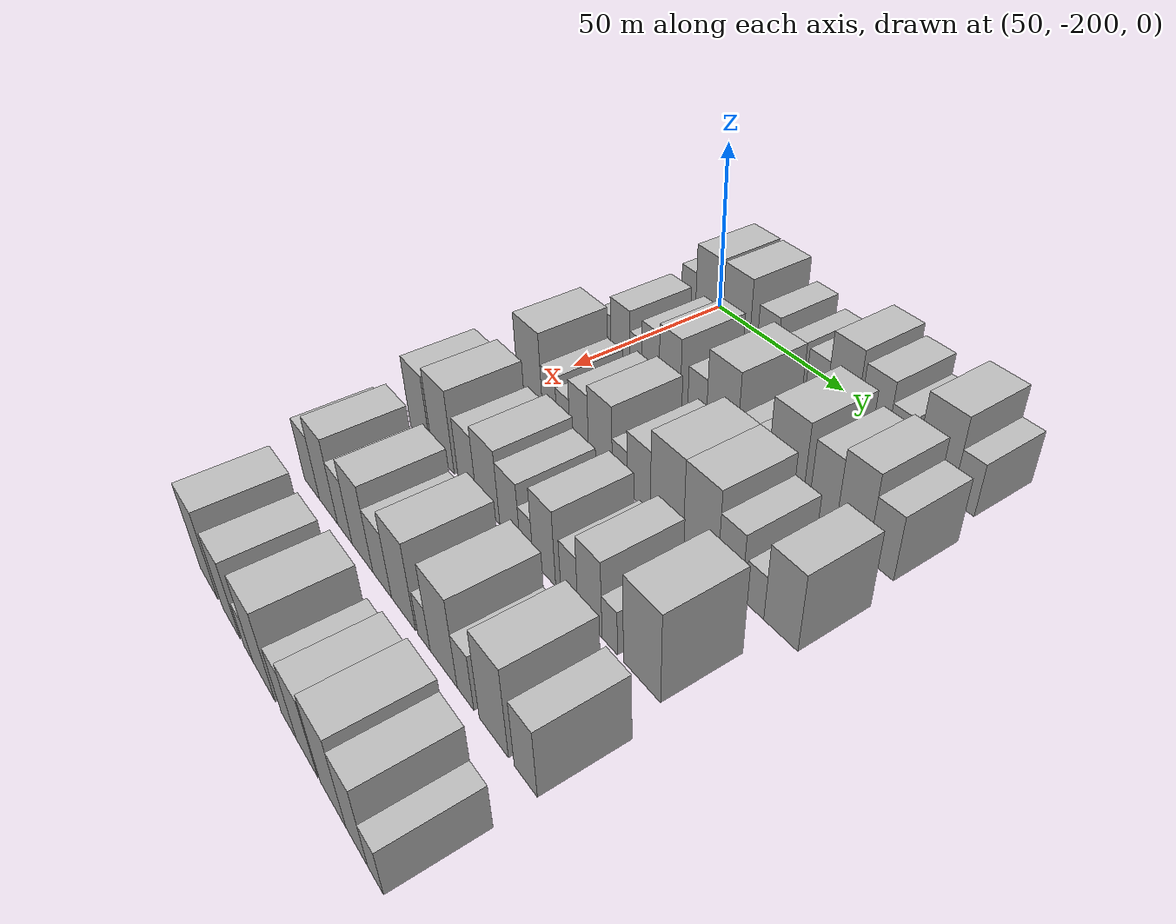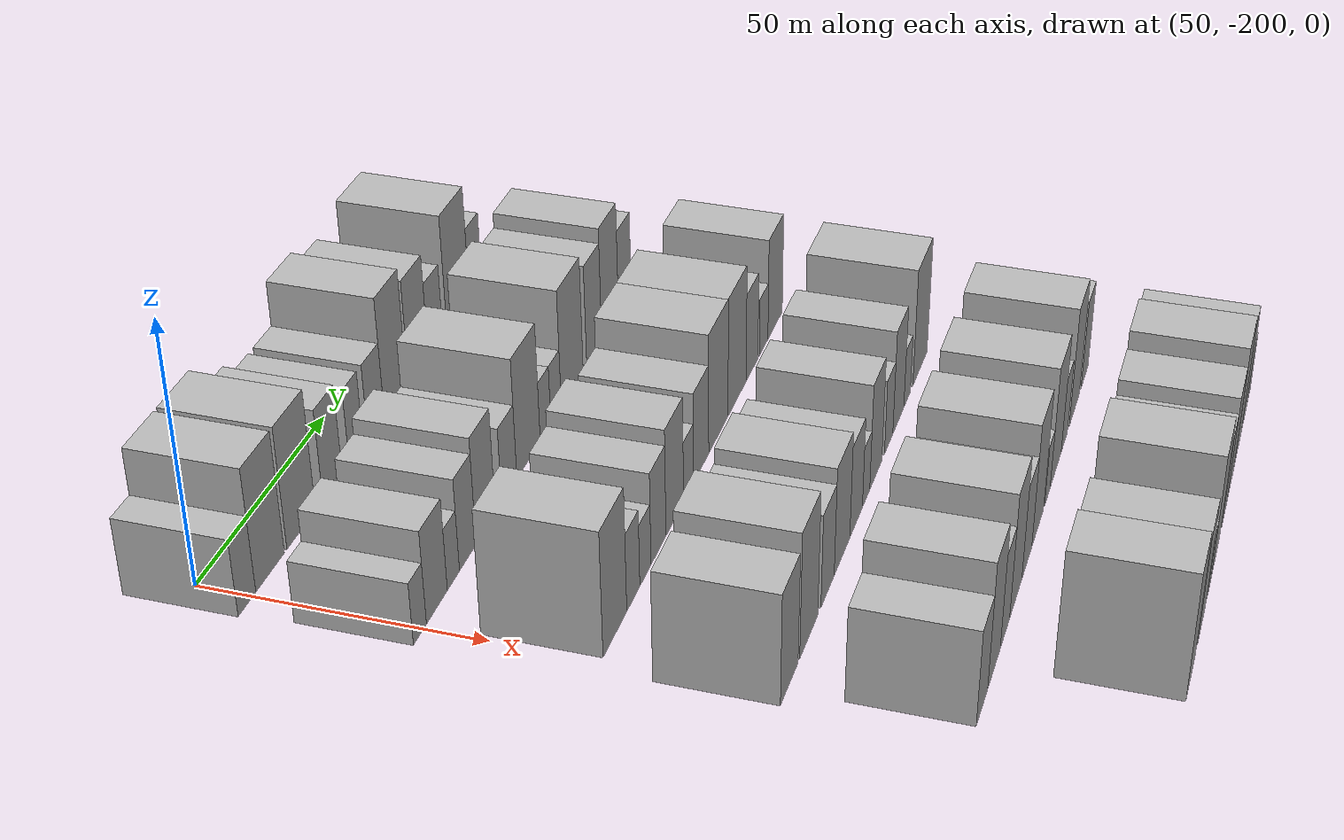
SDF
<sdf version="1.6">
 <world name="default">
  <model name="building_34">
   <static>1</static>
   <pose>50.0000 -202.1940 0 0.000000 0.000000 0.000000</pose>
   <link name="link">
    <pose>0 0 7.50 0 0 0</pose>
    <collision name="collision"><geometry><box><size>20.0000 6.4401 15.0000</size></box></geometry></collision>
    <visual name="visual">
     <cast_shadows>0</cast_shadows>
     <geometry><box><size>20.0000 6.4401 15.0000</size></box></geometry>
     <material>
      <script>
       <uri>model://HANNAS_wall/materials/scripts</uri>
       <uri>model://HANNAS_wall/materials/textures</uri>
       <name>vrc/HANNAS_wall</name>
      </script>
     </material>
    </visual>
   </link>
  </model>
  <model name="building_35">
   <static>1</static>
   <pose>50.0000 -193.6166 0 0.000000 0.000000 0.000000</pose>
   <link name="link">
    <pose>0 0 12.00 0 0 0</pose>
    <collision name="collision"><geometry><box><size>20.0000 10.7147 24.0000</size></box></geometry></collision>
    <visual name="visual">
     <cast_shadows>0</cast_shadows>
     <geometry><box><size>20.0000 10.7147 24.0000</size></box></geometry>
     <material>
      <script>
       <uri>model://HANNAS_wall/materials/scripts</uri>
       <uri>model://HANNAS_wall/materials/textures</uri>
       <name>vrc/HANNAS_wall</name>
      </script>
     </material>
    </visual>
   </link>
  </model>
  <model name="building_36">
   <static>1</static>
   <pose>50.0000 -181.6224 0 0.000000 0.000000 0.000000</pose>
   <link name="link">
    <pose>0 0 12.00 0 0 0</pose>
    <collision name="collision"><geometry><box><size>20.0000 11.2737 24.0000</size></box></geometry></collision>
    <visual name="visual">
     <cast_shadows>0</cast_shadows>
     <geometry><box><size>20.0000 11.2737 24.0000</size></box></geometry>
     <material>
      <script>
       <uri>model://HANNAS_wall/materials/scripts</uri>
       <uri>model://HANNAS_wall/materials/textures</uri>
       <name>vrc/HANNAS_wall</name>
      </script>
     </material>
    </visual>
   </link>
  </model>
  <model name="building_37">
   <static>1</static>
   <pose>50.0000 -168.9967 0 0.000000 0.000000 0.000000</pose>
   <link name="link">
    <pose>0 0 9.00 0 0 0</pose>
    <collision name="collision"><geometry><box><size>20.0000 7.9776 18.0000</size></box></geometry></collision>
    <visual name="visual">
     <cast_shadows>0</cast_shadows>
     <geometry><box><size>20.0000 7.9776 18.0000</size></box></geometry>
     <material>
      <script>
       <uri>model://HANNAS_wall/materials/scripts</uri>
       <uri>model://HANNAS_wall/materials/textures</uri>
       <name>vrc/HANNAS_wall</name>
      </script>
     </material>
    </visual>
   </link>
  </model>
  <model name="building_38">
   <static>1</static>
   <pose>50.0000 -158.9827 0 0.000000 0.000000 0.000000</pose>
   <link name="link">
    <pose>0 0 7.50 0 0 0</pose>
    <collision name="collision"><geometry><box><size>20.0000 6.0505 15.0000</size></box></geometry></collision>
    <visual name="visual">
     <cast_shadows>0</cast_shadows>
     <geometry><box><size>20.0000 6.0505 15.0000</size></box></geometry>
     <material>
      <script>
       <uri>model://HANNAS_wall/materials/scripts</uri>
       <uri>model://HANNAS_wall/materials/textures</uri>
       <name>vrc/HANNAS_wall</name>
      </script>
     </material>
    </visual>
   </link>
  </model>
  <model name="building_39">
   <static>1</static>
   <pose>50.0000 -150.2949 0 0.000000 0.000000 0.000000</pose>
   <link name="link">
    <pose>0 0 7.50 0 0 0</pose>
    <collision name="collision"><geometry><box><size>20.0000 7.3253 15.0000</size></box></geometry></collision>
    <visual name="visual">
     <cast_shadows>0</cast_shadows>
     <geometry><box><size>20.0000 7.3253 15.0000</size></box></geometry>
     <material>
      <script>
       <uri>model://HANNAS_wall/materials/scripts</uri>
       <uri>model://HANNAS_wall/materials/textures</uri>
       <name>vrc/HANNAS_wall</name>
      </script>
     </material>
    </visual>
   </link>
  </model>
  <model name="building_40">
   <static>1</static>
   <pose>50.0000 -141.5123 0 0.000000 0.000000 0.000000</pose>
   <link name="link">
    <pose>0 0 12.00 0 0 0</pose>
    <collision name="collision"><geometry><box><size>20.0000 10.2399 24.0000</size></box></geometry></collision>
    <visual name="visual">
     <cast_shadows>0</cast_shadows>
     <geometry><box><size>20.0000 10.2399 24.0000</size></box></geometry>
     <material>
      <script>
       <uri>model://HANNAS_wall/materials/scripts</uri>
       <uri>model://HANNAS_wall/materials/textures</uri>
       <name>vrc/HANNAS_wall</name>
      </script>
     </material>
    </visual>
   </link>
  </model>
  <model name="building_41">
   <static>1</static>
   <pose>50.0000 -130.7326 0 0.000000 0.000000 0.000000</pose>
   <link name="link">
    <pose>0 0 10.50 0 0 0</pose>
    <collision name="collision"><geometry><box><size>20.0000 9.3195 21.0000</size></box></geometry></collision>
    <visual name="visual">
     <cast_shadows>0</cast_shadows>
     <geometry><box><size>20.0000 9.3195 21.0000</size></box></geometry>
     <material>
      <script>
       <uri>model://HANNAS_wall/materials/scripts</uri>
       <uri>model://HANNAS_wall/materials/textures</uri>
       <name>vrc/HANNAS_wall</name>
      </script>
     </material>
    </visual>
   </link>
  </model>
  <model name="building_42">
   <static>1</static>
   <pose>50.0000 -122.4962 0 0.000000 0.000000 0.000000</pose>
   <link name="link">
    <pose>0 0 7.50 0 0 0</pose>
    <collision name="collision"><geometry><box><size>20.0000 7.1534 15.0000</size></box></geometry></collision>
    <visual name="visual">
     <cast_shadows>0</cast_shadows>
     <geometry><box><size>20.0000 7.1534 15.0000</size></box></geometry>
     <material>
      <script>
       <uri>model://HANNAS_wall/materials/scripts</uri>
       <uri>model://HANNAS_wall/materials/textures</uri>
       <name>vrc/HANNAS_wall</name>
      </script>
     </material>
    </visual>
   </link>
  </model>
  <model name="building_43">
   <static>1</static>
   <pose>50.0000 -111.1496 0 0.000000 0.000000 0.000000</pose>
   <link name="link">
    <pose>0 0 12.00 0 0 0</pose>
    <collision name="collision"><geometry><box><size>20.0000 11.5397 24.0000</size></box></geometry></collision>
    <visual name="visual">
     <cast_shadows>0</cast_shadows>
     <geometry><box><size>20.0000 11.5397 24.0000</size></box></geometry>
     <material>
      <script>
       <uri>model://HANNAS_wall/materials/scripts</uri>
       <uri>model://HANNAS_wall/materials/textures</uri>
       <name>vrc/HANNAS_wall</name>
      </script>
     </material>
    </visual>
   </link>
  </model>
  <model name="building_44">
   <static>1</static>
   <pose>50.0000 -102.1287 0 0.000000 0.000000 0.000000</pose>
   <link name="link">
    <pose>0 0 7.50 0 0 0</pose>
    <collision name="collision"><geometry><box><size>20.0000 6.5022 15.0000</size></box></geometry></collision>
    <visual name="visual">
     <cast_shadows>0</cast_shadows>
     <geometry><box><size>20.0000 6.5022 15.0000</size></box></geometry>
     <material>
      <script>
       <uri>model://HANNAS_wall/materials/scripts</uri>
       <uri>model://HANNAS_wall/materials/textures</uri>
       <name>vrc/HANNAS_wall</name>
      </script>
     </material>
    </visual>
   </link>
  </model>
  <model name="building_146">
   <static>1</static>
   <pose>79.0000 -201.5609 0 0.000000 0.000000 0.000000</pose>
   <link name="link">
    <pose>0 0 6.00 0 0 0</pose>
    <collision name="collision"><geometry><box><size>20.0000 5.3778 12.0000</size></box></geometry></collision>
    <visual name="visual">
     <cast_shadows>0</cast_shadows>
     <geometry><box><size>20.0000 5.3778 12.0000</size></box></geometry>
     <material>
      <script>
       <uri>model://HANNAS_wall/materials/scripts</uri>
       <uri>model://HANNAS_wall/materials/textures</uri>
       <name>vrc/HANNAS_wall</name>
      </script>
     </material>
    </visual>
   </link>
  </model>
  <model name="building_147">
   <static>1</static>
   <pose>79.0000 -194.4551 0 0.000000 0.000000 0.000000</pose>
   <link name="link">
    <pose>0 0 9.00 0 0 0</pose>
    <collision name="collision"><geometry><box><size>20.0000 8.8338 18.0000</size></box></geometry></collision>
    <visual name="visual">
     <cast_shadows>0</cast_shadows>
     <geometry><box><size>20.0000 8.8338 18.0000</size></box></geometry>
     <material>
      <script>
       <uri>model://HANNAS_wall/materials/scripts</uri>
       <uri>model://HANNAS_wall/materials/textures</uri>
       <name>vrc/HANNAS_wall</name>
      </script>
     </material>
    </visual>
   </link>
  </model>
  <model name="building_148">
   <static>1</static>
   <pose>79.0000 -187.4035 0 0.000000 0.000000 0.000000</pose>
   <link name="link">
    <pose>0 0 6.00 0 0 0</pose>
    <collision name="collision"><geometry><box><size>20.0000 5.2695 12.0000</size></box></geometry></collision>
    <visual name="visual">
     <cast_shadows>0</cast_shadows>
     <geometry><box><size>20.0000 5.2695 12.0000</size></box></geometry>
     <material>
      <script>
       <uri>model://HANNAS_wall/materials/scripts</uri>
       <uri>model://HANNAS_wall/materials/textures</uri>
       <name>vrc/HANNAS_wall</name>
      </script>
     </material>
    </visual>
   </link>
  </model>
  <model name="building_149">
   <static>1</static>
   <pose>79.0000 -181.0654 0 0.000000 0.000000 0.000000</pose>
   <link name="link">
    <pose>0 0 9.00 0 0 0</pose>
    <collision name="collision"><geometry><box><size>20.0000 7.4067 18.0000</size></box></geometry></collision>
    <visual name="visual">
     <cast_shadows>0</cast_shadows>
     <geometry><box><size>20.0000 7.4067 18.0000</size></box></geometry>
     <material>
      <script>
       <uri>model://HANNAS_wall/materials/scripts</uri>
       <uri>model://HANNAS_wall/materials/textures</uri>
       <name>vrc/HANNAS_wall</name>
      </script>
     </material>
    </visual>
   </link>
  </model>
  <model name="building_150">
   <static>1</static>
   <pose>79.0000 -172.9305 0 0.000000 0.000000 0.000000</pose>
   <link name="link">
    <pose>0 0 10.50 0 0 0</pose>
    <collision name="collision"><geometry><box><size>20.0000 8.8631 21.0000</size></box></geometry></collision>
    <visual name="visual">
     <cast_shadows>0</cast_shadows>
     <geometry><box><size>20.0000 8.8631 21.0000</size></box></geometry>
     <material>
      <script>
       <uri>model://HANNAS_wall/materials/scripts</uri>
       <uri>model://HANNAS_wall/materials/textures</uri>
       <name>vrc/HANNAS_wall</name>
      </script>
     </material>
    </visual>
   </link>
  </model>
  <model name="building_151">
   <static>1</static>
   <pose>79.0000 -161.8401 0 0.000000 0.000000 0.000000</pose>
   <link name="link">
    <pose>0 0 7.50 0 0 0</pose>
    <collision name="collision"><geometry><box><size>20.0000 7.3178 15.0000</size></box></geometry></collision>
    <visual name="visual">
     <cast_shadows>0</cast_shadows>
     <geometry><box><size>20.0000 7.3178 15.0000</size></box></geometry>
     <material>
      <script>
       <uri>model://HANNAS_wall/materials/scripts</uri>
       <uri>model://HANNAS_wall/materials/textures</uri>
       <name>vrc/HANNAS_wall</name>
      </script>
     </material>
    </visual>
   </link>
  </model>
  <model name="building_152">
   <static>1</static>
   <pose>79.0000 -152.3569 0 0.000000 0.000000 0.000000</pose>
   <link name="link">
    <pose>0 0 12.00 0 0 0</pose>
    <collision name="collision"><geometry><box><size>20.0000 11.6485 24.0000</size></box></geometry></collision>
    <visual name="visual">
     <cast_shadows>0</cast_shadows>
     <geometry><box><size>20.0000 11.6485 24.0000</size></box></geometry>
     <material>
      <script>
       <uri>model://HANNAS_wall/materials/scripts</uri>
       <uri>model://HANNAS_wall/materials/textures</uri>
       <name>vrc/HANNAS_wall</name>
      </script>
     </material>
    </visual>
   </link>
  </model>
  <model name="building_153">
   <static>1</static>
   <pose>79.0000 -143.8088 0 0.000000 0.000000 0.000000</pose>
   <link name="link">
    <pose>0 0 6.00 0 0 0</pose>
    <collision name="collision"><geometry><box><size>20.0000 5.4477 12.0000</size></box></geometry></collision>
    <visual name="visual">
     <cast_shadows>0</cast_shadows>
     <geometry><box><size>20.0000 5.4477 12.0000</size></box></geometry>
     <material>
      <script>
       <uri>model://HANNAS_wall/materials/scripts</uri>
       <uri>model://HANNAS_wall/materials/textures</uri>
       <name>vrc/HANNAS_wall</name>
      </script>
     </material>
    </visual>
   </link>
  </model>
  <model name="building_154">
   <static>1</static>
   <pose>79.0000 -138.3303 0 0.000000 0.000000 0.000000</pose>
   <link name="link">
    <pose>0 0 6.00 0 0 0</pose>
    <collision name="collision"><geometry><box><size>20.0000 5.5093 12.0000</size></box></geometry></collision>
    <visual name="visual">
     <cast_shadows>0</cast_shadows>
     <geometry><box><size>20.0000 5.5093 12.0000</size></box></geometry>
     <material>
      <script>
       <uri>model://HANNAS_wall/materials/scripts</uri>
       <uri>model://HANNAS_wall/materials/textures</uri>
       <name>vrc/HANNAS_wall</name>
      </script>
     </material>
    </visual>
   </link>
  </model>
  <model name="building_155">
   <static>1</static>
   <pose>79.0000 -129.6408 0 0.000000 0.000000 0.000000</pose>
   <link name="link">
    <pose>0 0 12.00 0 0 0</pose>
    <collision name="collision"><geometry><box><size>20.0000 11.8698 24.0000</size></box></geometry></collision>
    <visual name="visual">
     <cast_shadows>0</cast_shadows>
     <geometry><box><size>20.0000 11.8698 24.0000</size></box></geometry>
     <material>
      <script>
       <uri>model://HANNAS_wall/materials/scripts</uri>
       <uri>model://HANNAS_wall/materials/textures</uri>
       <name>vrc/HANNAS_wall</name>
      </script>
     </material>
    </visual>
   </link>
  </model>
  <model name="building_156">
   <static>1</static>
   <pose>79.0000 -117.4468 0 0.000000 0.000000 0.000000</pose>
   <link name="link">
    <pose>0 0 10.50 0 0 0</pose>
    <collision name="collision"><geometry><box><size>20.0000 8.5182 21.0000</size></box></geometry></collision>
    <visual name="visual">
     <cast_shadows>0</cast_shadows>
     <geometry><box><size>20.0000 8.5182 21.0000</size></box></geometry>
     <material>
      <script>
       <uri>model://HANNAS_wall/materials/scripts</uri>
       <uri>model://HANNAS_wall/materials/textures</uri>
       <name>vrc/HANNAS_wall</name>
      </script>
     </material>
    </visual>
   </link>
  </model>
  <model name="building_157">
   <static>1</static>
   <pose>79.0000 -108.2829 0 0.000000 0.000000 0.000000</pose>
   <link name="link">
    <pose>0 0 12.00 0 0 0</pose>
    <collision name="collision"><geometry><box><size>20.0000 9.8094 24.0000</size></box></geometry></collision>
    <visual name="visual">
     <cast_shadows>0</cast_shadows>
     <geometry><box><size>20.0000 9.8094 24.0000</size></box></geometry>
     <material>
      <script>
       <uri>model://HANNAS_wall/materials/scripts</uri>
       <uri>model://HANNAS_wall/materials/textures</uri>
       <name>vrc/HANNAS_wall</name>
      </script>
     </material>
    </visual>
   </link>
  </model>
  <model name="building_158">
   <static>1</static>
   <pose>79.0000 -99.5708 0 0.000000 0.000000 0.000000</pose>
   <link name="link">
    <pose>0 0 9.00 0 0 0</pose>
    <collision name="collision"><geometry><box><size>20.0000 7.6148 18.0000</size></box></geometry></collision>
    <visual name="visual">
     <cast_shadows>0</cast_shadows>
     <geometry><box><size>20.0000 7.6148 18.0000</size></box></geometry>
     <material>
      <script>
       <uri>model://HANNAS_wall/materials/scripts</uri>
       <uri>model://HANNAS_wall/materials/textures</uri>
       <name>vrc/HANNAS_wall</name>
      </script>
     </material>
    </visual>
   </link>
  </model>
  <model name="building_265">
   <static>1</static>
   <pose>108.0000 -193.0036 0 0.000000 0.000000 0.000000</pose>
   <link name="link">
    <pose>0 0 12.00 0 0 0</pose>
    <collision name="collision"><geometry><box><size>20.0000 11.7179 24.0000</size></box></geometry></collision>
    <visual name="visual">
     <cast_shadows>0</cast_shadows>
     <geometry><box><size>20.0000 11.7179 24.0000</size></box></geometry>
     <material>
      <script>
       <uri>model://HANNAS_wall/materials/scripts</uri>
       <uri>model://HANNAS_wall/materials/textures</uri>
       <name>vrc/HANNAS_wall</name>
      </script>
     </material>
    </visual>
   </link>
  </model>
  <model name="building_266">
   <static>1</static>
   <pose>108.0000 -183.8019 0 0.000000 0.000000 0.000000</pose>
   <link name="link">
    <pose>0 0 7.50 0 0 0</pose>
    <collision name="collision"><geometry><box><size>20.0000 6.6856 15.0000</size></box></geometry></collision>
    <visual name="visual">
     <cast_shadows>0</cast_shadows>
     <geometry><box><size>20.0000 6.6856 15.0000</size></box></geometry>
     <material>
      <script>
       <uri>model://HANNAS_wall/materials/scripts</uri>
       <uri>model://HANNAS_wall/materials/textures</uri>
       <name>vrc/HANNAS_wall</name>
      </script>
     </material>
    </visual>
   </link>
  </model>
  <model name="building_267">
   <static>1</static>
   <pose>108.0000 -177.5155 0 0.000000 0.000000 0.000000</pose>
   <link name="link">
    <pose>0 0 6.00 0 0 0</pose>
    <collision name="collision"><geometry><box><size>20.0000 5.8872 12.0000</size></box></geometry></collision>
    <visual name="visual">
     <cast_shadows>0</cast_shadows>
     <geometry><box><size>20.0000 5.8872 12.0000</size></box></geometry>
     <material>
      <script>
       <uri>model://HANNAS_wall/materials/scripts</uri>
       <uri>model://HANNAS_wall/materials/textures</uri>
       <name>vrc/HANNAS_wall</name>
      </script>
     </material>
    </visual>
   </link>
  </model>
  <model name="building_268">
   <static>1</static>
   <pose>108.0000 -170.5426 0 0.000000 0.000000 0.000000</pose>
   <link name="link">
    <pose>0 0 9.00 0 0 0</pose>
    <collision name="collision"><geometry><box><size>20.0000 8.0586 18.0000</size></box></geometry></collision>
    <visual name="visual">
     <cast_shadows>0</cast_shadows>
     <geometry><box><size>20.0000 8.0586 18.0000</size></box></geometry>
     <material>
      <script>
       <uri>model://HANNAS_wall/materials/scripts</uri>
       <uri>model://HANNAS_wall/materials/textures</uri>
       <name>vrc/HANNAS_wall</name>
      </script>
     </material>
    </visual>
   </link>
  </model>
  <model name="building_269">
   <static>1</static>
   <pose>108.0000 -161.6012 0 0.000000 0.000000 0.000000</pose>
   <link name="link">
    <pose>0 0 10.50 0 0 0</pose>
    <collision name="collision"><geometry><box><size>20.0000 9.8243 21.0000</size></box></geometry></collision>
    <visual name="visual">
     <cast_shadows>0</cast_shadows>
     <geometry><box><size>20.0000 9.8243 21.0000</size></box></geometry>
     <material>
      <script>
       <uri>model://HANNAS_wall/materials/scripts</uri>
       <uri>model://HANNAS_wall/materials/textures</uri>
       <name>vrc/HANNAS_wall</name>
      </script>
     </material>
    </visual>
   </link>
  </model>
  <model name="building_270">
   <static>1</static>
   <pose>108.0000 -153.7851 0 0.000000 0.000000 0.000000</pose>
   <link name="link">
    <pose>0 0 6.00 0 0 0</pose>
    <collision name="collision"><geometry><box><size>20.0000 5.8078 12.0000</size></box></geometry></collision>
    <visual name="visual">
     <cast_shadows>0</cast_shadows>
     <geometry><box><size>20.0000 5.8078 12.0000</size></box></geometry>
     <material>
      <script>
       <uri>model://HANNAS_wall/materials/scripts</uri>
       <uri>model://HANNAS_wall/materials/textures</uri>
       <name>vrc/HANNAS_wall</name>
      </script>
     </material>
    </visual>
   </link>
  </model>
  <model name="building_271">
   <static>1</static>
   <pose>108.0000 -146.3863 0 0.000000 0.000000 0.000000</pose>
   <link name="link">
    <pose>0 0 9.00 0 0 0</pose>
    <collision name="collision"><geometry><box><size>20.0000 8.9899 18.0000</size></box></geometry></collision>
    <visual name="visual">
     <cast_shadows>0</cast_shadows>
     <geometry><box><size>20.0000 8.9899 18.0000</size></box></geometry>
     <material>
      <script>
       <uri>model://HANNAS_wall/materials/scripts</uri>
       <uri>model://HANNAS_wall/materials/textures</uri>
       <name>vrc/HANNAS_wall</name>
      </script>
     </material>
    </visual>
   </link>
  </model>
  <model name="building_272">
   <static>1</static>
   <pose>108.0000 -135.9258 0 0.000000 0.000000 0.000000</pose>
   <link name="link">
    <pose>0 0 12.00 0 0 0</pose>
    <collision name="collision"><geometry><box><size>20.0000 11.9309 24.0000</size></box></geometry></collision>
    <visual name="visual">
     <cast_shadows>0</cast_shadows>
     <geometry><box><size>20.0000 11.9309 24.0000</size></box></geometry>
     <material>
      <script>
       <uri>model://HANNAS_wall/materials/scripts</uri>
       <uri>model://HANNAS_wall/materials/textures</uri>
       <name>vrc/HANNAS_wall</name>
      </script>
     </material>
    </visual>
   </link>
  </model>
  <model name="building_273">
   <static>1</static>
   <pose>108.0000 -124.1123 0 0.000000 0.000000 0.000000</pose>
   <link name="link">
    <pose>0 0 12.00 0 0 0</pose>
    <collision name="collision"><geometry><box><size>20.0000 11.6962 24.0000</size></box></geometry></collision>
    <visual name="visual">
     <cast_shadows>0</cast_shadows>
     <geometry><box><size>20.0000 11.6962 24.0000</size></box></geometry>
     <material>
      <script>
       <uri>model://HANNAS_wall/materials/scripts</uri>
       <uri>model://HANNAS_wall/materials/textures</uri>
       <name>vrc/HANNAS_wall</name>
      </script>
     </material>
    </visual>
   </link>
  </model>
  <model name="building_274">
   <static>1</static>
   <pose>108.0000 -114.3549 0 0.000000 0.000000 0.000000</pose>
   <link name="link">
    <pose>0 0 9.00 0 0 0</pose>
    <collision name="collision"><geometry><box><size>20.0000 7.8185 18.0000</size></box></geometry></collision>
    <visual name="visual">
     <cast_shadows>0</cast_shadows>
     <geometry><box><size>20.0000 7.8185 18.0000</size></box></geometry>
     <material>
      <script>
       <uri>model://HANNAS_wall/materials/scripts</uri>
       <uri>model://HANNAS_wall/materials/textures</uri>
       <name>vrc/HANNAS_wall</name>
      </script>
     </material>
    </visual>
   </link>
  </model>
  <model name="building_275">
   <static>1</static>
   <pose>108.0000 -106.5390 0 0.000000 0.000000 0.000000</pose>
   <link name="link">
    <pose>0 0 6.00 0 0 0</pose>
    <collision name="collision"><geometry><box><size>20.0000 5.8134 12.0000</size></box></geometry></collision>
    <visual name="visual">
     <cast_shadows>0</cast_shadows>
     <geometry><box><size>20.0000 5.8134 12.0000</size></box></geometry>
     <material>
      <script>
       <uri>model://HANNAS_wall/materials/scripts</uri>
       <uri>model://HANNAS_wall/materials/textures</uri>
       <name>vrc/HANNAS_wall</name>
      </script>
     </material>
    </visual>
   </link>
  </model>
  <model name="building_276">
   <static>1</static>
   <pose>108.0000 -98.6018 0 0.000000 0.000000 0.000000</pose>
   <link name="link">
    <pose>0 0 10.50 0 0 0</pose>
    <collision name="collision"><geometry><box><size>20.0000 10.0610 21.0000</size></box></geometry></collision>
    <visual name="visual">
     <cast_shadows>0</cast_shadows>
     <geometry><box><size>20.0000 10.0610 21.0000</size></box></geometry>
     <material>
      <script>
       <uri>model://HANNAS_wall/materials/scripts</uri>
       <uri>model://HANNAS_wall/materials/textures</uri>
       <name>vrc/HANNAS_wall</name>
      </script>
     </material>
    </visual>
   </link>
  </model>
  <model name="building_373">
   <static>1</static>
   <pose>137.0000 -196.9068 0 0.000000 0.000000 0.000000</pose>
   <link name="link">
    <pose>0 0 10.50 0 0 0</pose>
    <collision name="collision"><geometry><box><size>20.0000 10.3317 21.0000</size></box></geometry></collision>
    <visual name="visual">
     <cast_shadows>0</cast_shadows>
     <geometry><box><size>20.0000 10.3317 21.0000</size></box></geometry>
     <material>
      <script>
       <uri>model://HANNAS_wall/materials/scripts</uri>
       <uri>model://HANNAS_wall/materials/textures</uri>
       <name>vrc/HANNAS_wall</name>
      </script>
     </material>
    </visual>
   </link>
  </model>
  <model name="building_374">
   <static>1</static>
   <pose>137.0000 -185.2037 0 0.000000 0.000000 0.000000</pose>
   <link name="link">
    <pose>0 0 12.00 0 0 0</pose>
    <collision name="collision"><geometry><box><size>20.0000 11.0746 24.0000</size></box></geometry></collision>
    <visual name="visual">
     <cast_shadows>0</cast_shadows>
     <geometry><box><size>20.0000 11.0746 24.0000</size></box></geometry>
     <material>
      <script>
       <uri>model://HANNAS_wall/materials/scripts</uri>
       <uri>model://HANNAS_wall/materials/textures</uri>
       <name>vrc/HANNAS_wall</name>
      </script>
     </material>
    </visual>
   </link>
  </model>
  <model name="building_375">
   <static>1</static>
   <pose>137.0000 -173.3847 0 0.000000 0.000000 0.000000</pose>
   <link name="link">
    <pose>0 0 9.00 0 0 0</pose>
    <collision name="collision"><geometry><box><size>20.0000 8.5634 18.0000</size></box></geometry></collision>
    <visual name="visual">
     <cast_shadows>0</cast_shadows>
     <geometry><box><size>20.0000 8.5634 18.0000</size></box></geometry>
     <material>
      <script>
       <uri>model://HANNAS_wall/materials/scripts</uri>
       <uri>model://HANNAS_wall/materials/textures</uri>
       <name>vrc/HANNAS_wall</name>
      </script>
     </material>
    </visual>
   </link>
  </model>
  <model name="building_376">
   <static>1</static>
   <pose>137.0000 -163.8590 0 0.000000 0.000000 0.000000</pose>
   <link name="link">
    <pose>0 0 10.50 0 0 0</pose>
    <collision name="collision"><geometry><box><size>20.0000 10.4880 21.0000</size></box></geometry></collision>
    <visual name="visual">
     <cast_shadows>0</cast_shadows>
     <geometry><box><size>20.0000 10.4880 21.0000</size></box></geometry>
     <material>
      <script>
       <uri>model://HANNAS_wall/materials/scripts</uri>
       <uri>model://HANNAS_wall/materials/textures</uri>
       <name>vrc/HANNAS_wall</name>
      </script>
     </material>
    </visual>
   </link>
  </model>
  <model name="building_377">
   <static>1</static>
   <pose>137.0000 -154.2280 0 0.000000 0.000000 0.000000</pose>
   <link name="link">
    <pose>0 0 9.00 0 0 0</pose>
    <collision name="collision"><geometry><box><size>20.0000 8.7741 18.0000</size></box></geometry></collision>
    <visual name="visual">
     <cast_shadows>0</cast_shadows>
     <geometry><box><size>20.0000 8.7741 18.0000</size></box></geometry>
     <material>
      <script>
       <uri>model://HANNAS_wall/materials/scripts</uri>
       <uri>model://HANNAS_wall/materials/textures</uri>
       <name>vrc/HANNAS_wall</name>
      </script>
     </material>
    </visual>
   </link>
  </model>
  <model name="building_378">
   <static>1</static>
   <pose>137.0000 -147.2200 0 0.000000 0.000000 0.000000</pose>
   <link name="link">
    <pose>0 0 6.00 0 0 0</pose>
    <collision name="collision"><geometry><box><size>20.0000 5.2417 12.0000</size></box></geometry></collision>
    <visual name="visual">
     <cast_shadows>0</cast_shadows>
     <geometry><box><size>20.0000 5.2417 12.0000</size></box></geometry>
     <material>
      <script>
       <uri>model://HANNAS_wall/materials/scripts</uri>
       <uri>model://HANNAS_wall/materials/textures</uri>
       <name>vrc/HANNAS_wall</name>
      </script>
     </material>
    </visual>
   </link>
  </model>
  <model name="building_379">
   <static>1</static>
   <pose>137.0000 -140.1599 0 0.000000 0.000000 0.000000</pose>
   <link name="link">
    <pose>0 0 10.50 0 0 0</pose>
    <collision name="collision"><geometry><box><size>20.0000 8.8785 21.0000</size></box></geometry></collision>
    <visual name="visual">
     <cast_shadows>0</cast_shadows>
     <geometry><box><size>20.0000 8.8785 21.0000</size></box></geometry>
     <material>
      <script>
       <uri>model://HANNAS_wall/materials/scripts</uri>
       <uri>model://HANNAS_wall/materials/textures</uri>
       <name>vrc/HANNAS_wall</name>
      </script>
     </material>
    </visual>
   </link>
  </model>
  <model name="building_380">
   <static>1</static>
   <pose>137.0000 -130.5492 0 0.000000 0.000000 0.000000</pose>
   <link name="link">
    <pose>0 0 7.50 0 0 0</pose>
    <collision name="collision"><geometry><box><size>20.0000 6.3430 15.0000</size></box></geometry></collision>
    <visual name="visual">
     <cast_shadows>0</cast_shadows>
     <geometry><box><size>20.0000 6.3430 15.0000</size></box></geometry>
     <material>
      <script>
       <uri>model://HANNAS_wall/materials/scripts</uri>
       <uri>model://HANNAS_wall/materials/textures</uri>
       <name>vrc/HANNAS_wall</name>
      </script>
     </material>
    </visual>
   </link>
  </model>
  <model name="building_381">
   <static>1</static>
   <pose>137.0000 -123.0594 0 0.000000 0.000000 0.000000</pose>
   <link name="link">
    <pose>0 0 10.50 0 0 0</pose>
    <collision name="collision"><geometry><box><size>20.0000 8.6366 21.0000</size></box></geometry></collision>
    <visual name="visual">
     <cast_shadows>0</cast_shadows>
     <geometry><box><size>20.0000 8.6366 21.0000</size></box></geometry>
     <material>
      <script>
       <uri>model://HANNAS_wall/materials/scripts</uri>
       <uri>model://HANNAS_wall/materials/textures</uri>
       <name>vrc/HANNAS_wall</name>
      </script>
     </material>
    </visual>
   </link>
  </model>
  <model name="building_382">
   <static>1</static>
   <pose>137.0000 -116.1046 0 0.000000 0.000000 0.000000</pose>
   <link name="link">
    <pose>0 0 6.00 0 0 0</pose>
    <collision name="collision"><geometry><box><size>20.0000 5.2730 12.0000</size></box></geometry></collision>
    <visual name="visual">
     <cast_shadows>0</cast_shadows>
     <geometry><box><size>20.0000 5.2730 12.0000</size></box></geometry>
     <material>
      <script>
       <uri>model://HANNAS_wall/materials/scripts</uri>
       <uri>model://HANNAS_wall/materials/textures</uri>
       <name>vrc/HANNAS_wall</name>
      </script>
     </material>
    </visual>
   </link>
  </model>
  <model name="building_383">
   <static>1</static>
   <pose>137.0000 -105.5075 0 0.000000 0.000000 0.000000</pose>
   <link name="link">
    <pose>0 0 12.00 0 0 0</pose>
    <collision name="collision"><geometry><box><size>20.0000 11.9210 24.0000</size></box></geometry></collision>
    <visual name="visual">
     <cast_shadows>0</cast_shadows>
     <geometry><box><size>20.0000 11.9210 24.0000</size></box></geometry>
     <material>
      <script>
       <uri>model://HANNAS_wall/materials/scripts</uri>
       <uri>model://HANNAS_wall/materials/textures</uri>
       <name>vrc/HANNAS_wall</name>
      </script>
     </material>
    </visual>
   </link>
  </model>
  <model name="building_490">
   <static>1</static>
   <pose>166.0000 -194.0981 0 0.000000 0.000000 0.000000</pose>
   <link name="link">
    <pose>0 0 9.00 0 0 0</pose>
    <collision name="collision"><geometry><box><size>20.0000 8.6743 18.0000</size></box></geometry></collision>
    <visual name="visual">
     <cast_shadows>0</cast_shadows>
     <geometry><box><size>20.0000 8.6743 18.0000</size></box></geometry>
     <material>
      <script>
       <uri>model://HANNAS_wall/materials/scripts</uri>
       <uri>model://HANNAS_wall/materials/textures</uri>
       <name>vrc/HANNAS_wall</name>
      </script>
     </material>
    </visual>
   </link>
  </model>
  <model name="building_491">
   <static>1</static>
   <pose>166.0000 -184.7561 0 0.000000 0.000000 0.000000</pose>
   <link name="link">
    <pose>0 0 12.00 0 0 0</pose>
    <collision name="collision"><geometry><box><size>20.0000 10.0095 24.0000</size></box></geometry></collision>
    <visual name="visual">
     <cast_shadows>0</cast_shadows>
     <geometry><box><size>20.0000 10.0095 24.0000</size></box></geometry>
     <material>
      <script>
       <uri>model://HANNAS_wall/materials/scripts</uri>
       <uri>model://HANNAS_wall/materials/textures</uri>
       <name>vrc/HANNAS_wall</name>
      </script>
     </material>
    </visual>
   </link>
  </model>
  <model name="building_492">
   <static>1</static>
   <pose>166.0000 -175.9192 0 0.000000 0.000000 0.000000</pose>
   <link name="link">
    <pose>0 0 9.00 0 0 0</pose>
    <collision name="collision"><geometry><box><size>20.0000 7.6643 18.0000</size></box></geometry></collision>
    <visual name="visual">
     <cast_shadows>0</cast_shadows>
     <geometry><box><size>20.0000 7.6643 18.0000</size></box></geometry>
     <material>
      <script>
       <uri>model://HANNAS_wall/materials/scripts</uri>
       <uri>model://HANNAS_wall/materials/textures</uri>
       <name>vrc/HANNAS_wall</name>
      </script>
     </material>
    </visual>
   </link>
  </model>
  <model name="building_493">
   <static>1</static>
   <pose>166.0000 -166.8669 0 0.000000 0.000000 0.000000</pose>
   <link name="link">
    <pose>0 0 12.00 0 0 0</pose>
    <collision name="collision"><geometry><box><size>20.0000 10.4404 24.0000</size></box></geometry></collision>
    <visual name="visual">
     <cast_shadows>0</cast_shadows>
     <geometry><box><size>20.0000 10.4404 24.0000</size></box></geometry>
     <material>
      <script>
       <uri>model://HANNAS_wall/materials/scripts</uri>
       <uri>model://HANNAS_wall/materials/textures</uri>
       <name>vrc/HANNAS_wall</name>
      </script>
     </material>
    </visual>
   </link>
  </model>
  <model name="building_494">
   <static>1</static>
   <pose>166.0000 -157.2242 0 0.000000 0.000000 0.000000</pose>
   <link name="link">
    <pose>0 0 9.00 0 0 0</pose>
    <collision name="collision"><geometry><box><size>20.0000 8.8451 18.0000</size></box></geometry></collision>
    <visual name="visual">
     <cast_shadows>0</cast_shadows>
     <geometry><box><size>20.0000 8.8451 18.0000</size></box></geometry>
     <material>
      <script>
       <uri>model://HANNAS_wall/materials/scripts</uri>
       <uri>model://HANNAS_wall/materials/textures</uri>
       <name>vrc/HANNAS_wall</name>
      </script>
     </material>
    </visual>
   </link>
  </model>
  <model name="building_495">
   <static>1</static>
   <pose>166.0000 -147.3962 0 0.000000 0.000000 0.000000</pose>
   <link name="link">
    <pose>0 0 12.00 0 0 0</pose>
    <collision name="collision"><geometry><box><size>20.0000 10.8109 24.0000</size></box></geometry></collision>
    <visual name="visual">
     <cast_shadows>0</cast_shadows>
     <geometry><box><size>20.0000 10.8109 24.0000</size></box></geometry>
     <material>
      <script>
       <uri>model://HANNAS_wall/materials/scripts</uri>
       <uri>model://HANNAS_wall/materials/textures</uri>
       <name>vrc/HANNAS_wall</name>
      </script>
     </material>
    </visual>
   </link>
  </model>
  <model name="building_496">
   <static>1</static>
   <pose>166.0000 -138.3531 0 0.000000 0.000000 0.000000</pose>
   <link name="link">
    <pose>0 0 6.00 0 0 0</pose>
    <collision name="collision"><geometry><box><size>20.0000 5.2753 12.0000</size></box></geometry></collision>
    <visual name="visual">
     <cast_shadows>0</cast_shadows>
     <geometry><box><size>20.0000 5.2753 12.0000</size></box></geometry>
     <material>
      <script>
       <uri>model://HANNAS_wall/materials/scripts</uri>
       <uri>model://HANNAS_wall/materials/textures</uri>
       <name>vrc/HANNAS_wall</name>
      </script>
     </material>
    </visual>
   </link>
  </model>
  <model name="building_497">
   <static>1</static>
   <pose>166.0000 -130.2352 0 0.000000 0.000000 0.000000</pose>
   <link name="link">
    <pose>0 0 12.00 0 0 0</pose>
    <collision name="collision"><geometry><box><size>20.0000 10.9604 24.0000</size></box></geometry></collision>
    <visual name="visual">
     <cast_shadows>0</cast_shadows>
     <geometry><box><size>20.0000 10.9604 24.0000</size></box></geometry>
     <material>
      <script>
       <uri>model://HANNAS_wall/materials/scripts</uri>
       <uri>model://HANNAS_wall/materials/textures</uri>
       <name>vrc/HANNAS_wall</name>
      </script>
     </material>
    </visual>
   </link>
  </model>
  <model name="building_498">
   <static>1</static>
   <pose>166.0000 -121.5795 0 0.000000 0.000000 0.000000</pose>
   <link name="link">
    <pose>0 0 7.50 0 0 0</pose>
    <collision name="collision"><geometry><box><size>20.0000 6.3511 15.0000</size></box></geometry></collision>
    <visual name="visual">
     <cast_shadows>0</cast_shadows>
     <geometry><box><size>20.0000 6.3511 15.0000</size></box></geometry>
     <material>
      <script>
       <uri>model://HANNAS_wall/materials/scripts</uri>
       <uri>model://HANNAS_wall/materials/textures</uri>
       <name>vrc/HANNAS_wall</name>
      </script>
     </material>
    </visual>
   </link>
  </model>
  <model name="building_499">
   <static>1</static>
   <pose>166.0000 -111.1341 0 0.000000 0.000000 0.000000</pose>
   <link name="link">
    <pose>0 0 12.00 0 0 0</pose>
    <collision name="collision"><geometry><box><size>20.0000 10.5397 24.0000</size></box></geometry></collision>
    <visual name="visual">
     <cast_shadows>0</cast_shadows>
     <geometry><box><size>20.0000 10.5397 24.0000</size></box></geometry>
     <material>
      <script>
       <uri>model://HANNAS_wall/materials/scripts</uri>
       <uri>model://HANNAS_wall/materials/textures</uri>
       <name>vrc/HANNAS_wall</name>
      </script>
     </material>
    </visual>
   </link>
  </model>
  <model name="building_500">
   <static>1</static>
   <pose>166.0000 -100.0213 0 0.000000 0.000000 0.000000</pose>
   <link name="link">
    <pose>0 0 9.00 0 0 0</pose>
    <collision name="collision"><geometry><box><size>20.0000 7.6859 18.0000</size></box></geometry></collision>
    <visual name="visual">
     <cast_shadows>0</cast_shadows>
     <geometry><box><size>20.0000 7.6859 18.0000</size></box></geometry>
     <material>
      <script>
       <uri>model://HANNAS_wall/materials/scripts</uri>
       <uri>model://HANNAS_wall/materials/textures</uri>
       <name>vrc/HANNAS_wall</name>
      </script>
     </material>
    </visual>
   </link>
  </model>
  <model name="building_597">
   <static>1</static>
   <pose>195.0000 -178.6894 0 0.000000 0.000000 0.000000</pose>
   <link name="link">
    <pose>0 0 12.00 0 0 0</pose>
    <collision name="collision"><geometry><box><size>20.0000 10.7267 24.0000</size></box></geometry></collision>
    <visual name="visual">
     <cast_shadows>0</cast_shadows>
     <geometry><box><size>20.0000 10.7267 24.0000</size></box></geometry>
     <material>
      <script>
       <uri>model://HANNAS_wall/materials/scripts</uri>
       <uri>model://HANNAS_wall/materials/textures</uri>
       <name>vrc/HANNAS_wall</name>
      </script>
     </material>
    </visual>
   </link>
  </model>
  <model name="building_598">
   <static>1</static>
   <pose>195.0000 -165.3387 0 0.000000 0.000000 0.000000</pose>
   <link name="link">
    <pose>0 0 10.50 0 0 0</pose>
    <collision name="collision"><geometry><box><size>20.0000 9.9747 21.0000</size></box></geometry></collision>
    <visual name="visual">
     <cast_shadows>0</cast_shadows>
     <geometry><box><size>20.0000 9.9747 21.0000</size></box></geometry>
     <material>
      <script>
       <uri>model://HANNAS_wall/materials/scripts</uri>
       <uri>model://HANNAS_wall/materials/textures</uri>
       <name>vrc/HANNAS_wall</name>
      </script>
     </material>
    </visual>
   </link>
  </model>
  <model name="building_599">
   <static>1</static>
   <pose>195.0000 -155.7897 0 0.000000 0.000000 0.000000</pose>
   <link name="link">
    <pose>0 0 6.00 0 0 0</pose>
    <collision name="collision"><geometry><box><size>20.0000 5.1234 12.0000</size></box></geometry></collision>
    <visual name="visual">
     <cast_shadows>0</cast_shadows>
     <geometry><box><size>20.0000 5.1234 12.0000</size></box></geometry>
     <material>
      <script>
       <uri>model://HANNAS_wall/materials/scripts</uri>
       <uri>model://HANNAS_wall/materials/textures</uri>
       <name>vrc/HANNAS_wall</name>
      </script>
     </material>
    </visual>
   </link>
  </model>
  <model name="building_600">
   <static>1</static>
   <pose>195.0000 -147.5164 0 0.000000 0.000000 0.000000</pose>
   <link name="link">
    <pose>0 0 12.00 0 0 0</pose>
    <collision name="collision"><geometry><box><size>20.0000 11.4233 24.0000</size></box></geometry></collision>
    <visual name="visual">
     <cast_shadows>0</cast_shadows>
     <geometry><box><size>20.0000 11.4233 24.0000</size></box></geometry>
     <material>
      <script>
       <uri>model://HANNAS_wall/materials/scripts</uri>
       <uri>model://HANNAS_wall/materials/textures</uri>
       <name>vrc/HANNAS_wall</name>
      </script>
     </material>
    </visual>
   </link>
  </model>
  <model name="building_601">
   <static>1</static>
   <pose>195.0000 -135.1889 0 0.000000 0.000000 0.000000</pose>
   <link name="link">
    <pose>0 0 9.00 0 0 0</pose>
    <collision name="collision"><geometry><box><size>20.0000 7.2318 18.0000</size></box></geometry></collision>
    <visual name="visual">
     <cast_shadows>0</cast_shadows>
     <geometry><box><size>20.0000 7.2318 18.0000</size></box></geometry>
     <material>
      <script>
       <uri>model://HANNAS_wall/materials/scripts</uri>
       <uri>model://HANNAS_wall/materials/textures</uri>
       <name>vrc/HANNAS_wall</name>
      </script>
     </material>
    </visual>
   </link>
  </model>
  <model name="building_602">
   <static>1</static>
   <pose>195.0000 -126.7016 0 0.000000 0.000000 0.000000</pose>
   <link name="link">
    <pose>0 0 10.50 0 0 0</pose>
    <collision name="collision"><geometry><box><size>20.0000 9.7427 21.0000</size></box></geometry></collision>
    <visual name="visual">
     <cast_shadows>0</cast_shadows>
     <geometry><box><size>20.0000 9.7427 21.0000</size></box></geometry>
     <material>
      <script>
       <uri>model://HANNAS_wall/materials/scripts</uri>
       <uri>model://HANNAS_wall/materials/textures</uri>
       <name>vrc/HANNAS_wall</name>
      </script>
     </material>
    </visual>
   </link>
  </model>
  <model name="building_603">
   <static>1</static>
   <pose>195.0000 -115.4334 0 0.000000 0.000000 0.000000</pose>
   <link name="link">
    <pose>0 0 12.00 0 0 0</pose>
    <collision name="collision"><geometry><box><size>20.0000 10.7937 24.0000</size></box></geometry></collision>
    <visual name="visual">
     <cast_shadows>0</cast_shadows>
     <geometry><box><size>20.0000 10.7937 24.0000</size></box></geometry>
     <material>
      <script>
       <uri>model://HANNAS_wall/materials/scripts</uri>
       <uri>model://HANNAS_wall/materials/textures</uri>
       <name>vrc/HANNAS_wall</name>
      </script>
     </material>
    </visual>
   </link>
  </model>
  <model name="building_604">
   <static>1</static>
   <pose>195.0000 -105.7864 0 0.000000 0.000000 0.000000</pose>
   <link name="link">
    <pose>0 0 10.50 0 0 0</pose>
    <collision name="collision"><geometry><box><size>20.0000 8.5002 21.0000</size></box></geometry></collision>
    <visual name="visual">
     <cast_shadows>0</cast_shadows>
     <geometry><box><size>20.0000 8.5002 21.0000</size></box></geometry>
     <material>
      <script>
       <uri>model://HANNAS_wall/materials/scripts</uri>
       <uri>model://HANNAS_wall/materials/textures</uri>
       <name>vrc/HANNAS_wall</name>
      </script>
     </material>
    </visual>
   </link>
  </model>
  <model name="building_605">
   <static>1</static>
   <pose>195.0000 -98.6003 0 0.000000 0.000000 0.000000</pose>
   <link name="link">
    <pose>0 0 6.00 0 0 0</pose>
    <collision name="collision"><geometry><box><size>20.0000 5.8722 12.0000</size></box></geometry></collision>
    <visual name="visual">
     <cast_shadows>0</cast_shadows>
     <geometry><box><size>20.0000 5.8722 12.0000</size></box></geometry>
     <material>
      <script>
       <uri>model://HANNAS_wall/materials/scripts</uri>
       <uri>model://HANNAS_wall/materials/textures</uri>
       <name>vrc/HANNAS_wall</name>
      </script>
     </material>
    </visual>
   </link>
  </model>
 </world>
</sdf>
